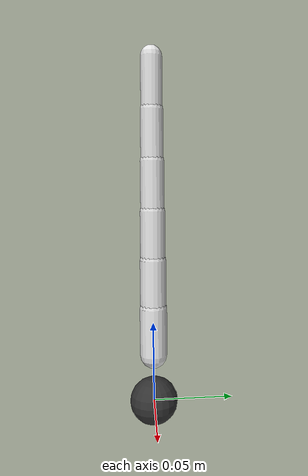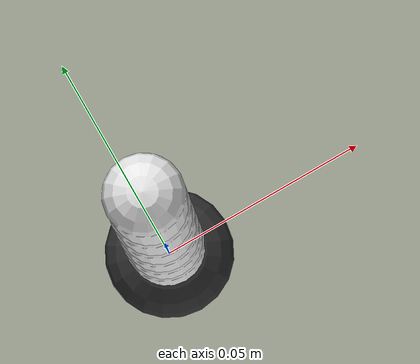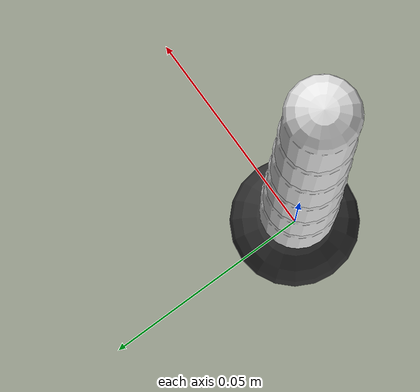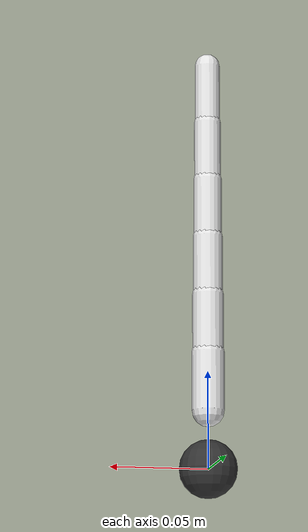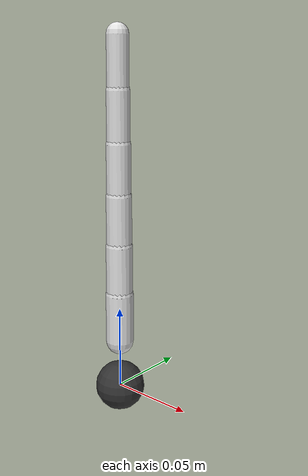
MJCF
<mujoco model="spirob_2c_planar">
  <compiler angle="degree" coordinate="local"/>
  <option timestep="0.002" integrator="RK4"/>

  <default>
    <joint type="hinge" axis="0 1 0" range="-20 20" damping="0.1" stiffness="1"/>
    <geom type="capsule" rgba="0.9 0.9 0.9 1"/>
  </default>

  <worldbody>
    <body name="base" pos="0 0 0">
      <geom type="sphere" size="0.015" rgba="0.2 0.2 0.2 1"/>

      <!-- segment 0 (thickest, near base) -->
      <body name="seg0" pos="0 0 0.030">
        <joint name="joint0"/>
        <geom fromto="0 0 0 0 0 0.030" size="0.0084"/>

        <!-- segment 1 -->
        <body name="seg1" pos="0 0 0.030">
          <joint name="joint1"/>
          <geom fromto="0 0 0 0 0 0.030" size="0.0080"/>

          <!-- segment 2 -->
          <body name="seg2" pos="0 0 0.030">
            <joint name="joint2"/>
            <geom fromto="0 0 0 0 0 0.030" size="0.0076"/>

            <!-- segment 3 -->
            <body name="seg3" pos="0 0 0.030">
              <joint name="joint3"/>
              <geom fromto="0 0 0 0 0 0.030" size="0.0072"/>

              <!-- segment 4 -->
              <body name="seg4" pos="0 0 0.030">
                <joint name="joint4"/>
                <geom fromto="0 0 0 0 0 0.030" size="0.0068"/>

                <!-- segment 5 (thinnest, tip) -->
                <body name="seg5" pos="0 0 0.030">
                  <joint name="joint5"/>
                  <geom fromto="0 0 0 0 0 0.030" size="0.0064"/>
                </body>

              </body>
            </body>
          </body>
        </body>
      </body>

    </body>
  </worldbody>

  <actuator>
    <position name="act0" joint="joint0" kp="20"/>
    <position name="act1" joint="joint1" kp="20"/>
    <position name="act2" joint="joint2" kp="20"/>
    <position name="act3" joint="joint3" kp="20"/>
    <position name="act4" joint="joint4" kp="20"/>
    <position name="act5" joint="joint5" kp="20"/>
  </actuator>
</mujoco>
